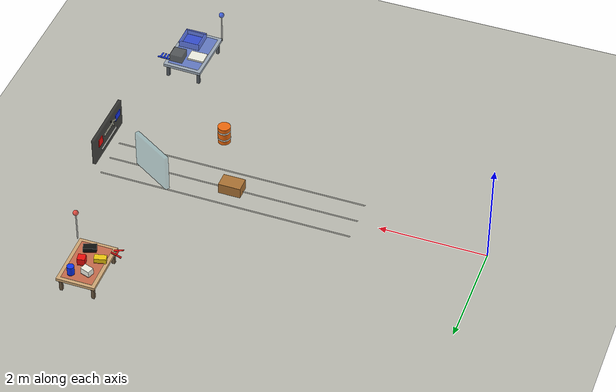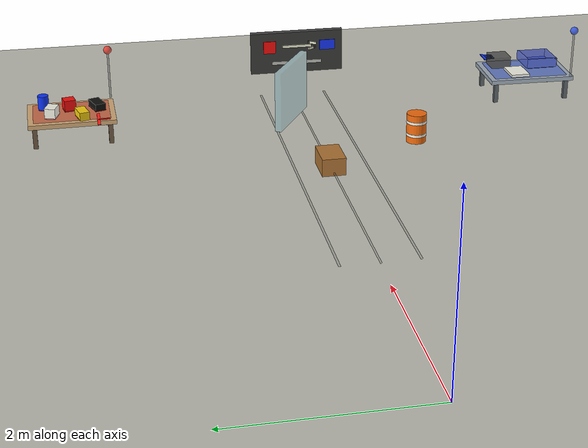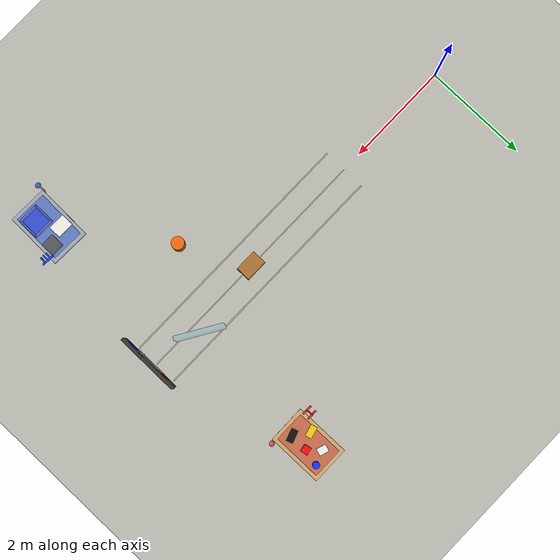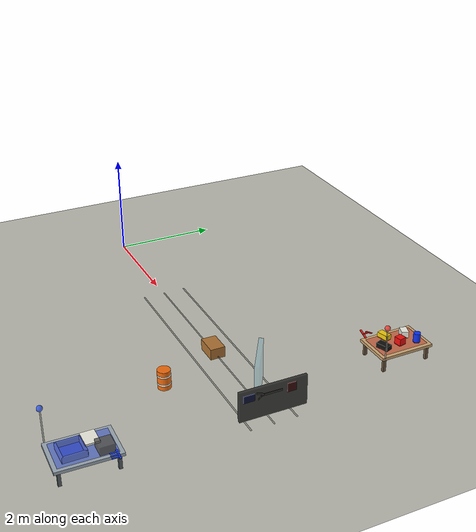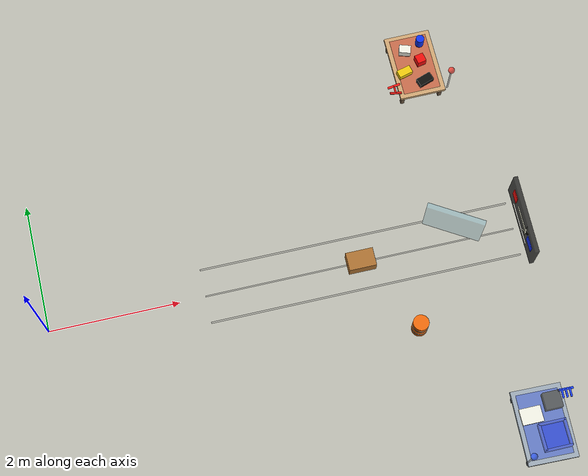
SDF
<sdf version="1.10">
 <world name="laboratory_landingbox_vla_task0">
  <model name="ground_plane">
   <static>true</static>
   <link name="link">
    <collision name="collision">
     <geometry><plane><normal>0 0 1</normal><size>500 500</size></plane></geometry>
     <surface><friction><ode><mu>100</mu><mu2>50</mu2></ode></friction></surface>
    </collision>
    <visual name="visual">
     <geometry><plane><normal>0 0 1</normal><size>500 500</size></plane></geometry>
     <material>
      <ambient>0.74000001 0.74000001 0.699999988 1</ambient>
      <diffuse>0.74000001 0.74000001 0.699999988 1</diffuse>
      <specular>0.0500000007 0.0500000007 0.0500000007 1</specular>
     </material>
    </visual>
    <inertial>
     <mass>1</mass>
     <inertia><ixx>1</ixx><ixy>0</ixy><ixz>0</ixz><iyy>1</iyy><iyz>0</iyz><izz>1</izz></inertia>
    </inertial>
   </link>
  </model>
  <model name="vla_task_route_corridor">
   <static>true</static>
   <pose>4.7999999999999998 0 0.035000000000000003 0 0 0</pose>
   <link name="link">
    <visual name="route_center_soft_line">
     <pose>0 0 0 3.1415926535897931 1.5707926536359933 3.1415926535897931</pose>
     <geometry><cylinder><radius>0.01</radius><length>4.7999999999999998</length></cylinder></geometry>
     <material>
      <ambient>0.449999988 0.449999988 0.449999988 0.180000007</ambient>
      <diffuse>0.449999988 0.449999988 0.449999988 0.180000007</diffuse>
      <emissive>0.00999999978 0.00999999978 0.00999999978 1</emissive>
     </material>
     <transparency>0.78000000000000003</transparency>
     <cast_shadows>false</cast_shadows>
    </visual>
    <visual name="corridor_left_boundary">
     <pose>0 0.41999999999999998 0.002 0 0 0</pose>
     <geometry><box><size>4.7999999999999998 0.025000000000000001 0.0040000000000000001</size></box></geometry>
     <material>
      <ambient>0.349999994 0.349999994 0.349999994 0.200000003</ambient>
      <diffuse>0.349999994 0.349999994 0.349999994 0.200000003</diffuse>
     </material>
     <transparency>0.80000000000000004</transparency>
     <cast_shadows>false</cast_shadows>
    </visual>
    <visual name="corridor_right_boundary">
     <pose>0 -0.41999999999999998 0.002 0 0 0</pose>
     <geometry><box><size>4.7999999999999998 0.025000000000000001 0.0040000000000000001</size></box></geometry>
     <material>
      <ambient>0.349999994 0.349999994 0.349999994 0.200000003</ambient>
      <diffuse>0.349999994 0.349999994 0.349999994 0.200000003</diffuse>
     </material>
     <transparency>0.80000000000000004</transparency>
     <cast_shadows>false</cast_shadows>
    </visual>
    <inertial>
     <mass>1</mass>
     <inertia><ixx>1</ixx><ixy>0</ixy><ixz>0</ixz><iyy>1</iyy><iyz>0</iyz><izz>1</izz></inertia>
    </inertial>
   </link>
  </model>
  <model name="vla_zone_A_pickup_table">
   <static>true</static>
   <pose>6.3699121475219727 2.8866209983825684 0 0 0 1.5787100085316108</pose>
   <link name="link">
    <collision name="table_top_collision">
     <pose>0 0 0.28499999999999998 0 0 0</pose>
     <geometry><box><size>1.05 0.71999999999999997 0.055</size></box></geometry>
    </collision>
    <visual name="table_top_visual">
     <pose>0 0 0.28499999999999998 0 0 0</pose>
     <geometry><box><size>1.05 0.71999999999999997 0.055</size></box></geometry>
     <material>
      <ambient>0.779999971 0.620000005 0.419999987 1</ambient>
      <diffuse>0.819999993 0.660000026 0.460000008 1</diffuse>
      <specular>0.0500000007 0.0500000007 0.0500000007 1</specular>
     </material>
    </visual>
    <collision name="leg_fl_collision">
     <pose>0.45000000000000001 0.29999999999999999 0.14000000000000001 0 0 0</pose>
     <geometry><box><size>0.055 0.055 0.28000000000000003</size></box></geometry>
    </collision>
    <collision name="leg_fr_collision">
     <pose>0.45000000000000001 -0.29999999999999999 0.14000000000000001 0 0 0</pose>
     <geometry><box><size>0.055 0.055 0.28000000000000003</size></box></geometry>
    </collision>
    <collision name="leg_bl_collision">
     <pose>-0.45000000000000001 0.29999999999999999 0.14000000000000001 0 0 0</pose>
     <geometry><box><size>0.055 0.055 0.28000000000000003</size></box></geometry>
    </collision>
    <collision name="leg_br_collision">
     <pose>-0.45000000000000001 -0.29999999999999999 0.14000000000000001 0 0 0</pose>
     <geometry><box><size>0.055 0.055 0.28000000000000003</size></box></geometry>
    </collision>
    <visual name="leg_fl_visual">
     <pose>0.45000000000000001 0.29999999999999999 0.14000000000000001 0 0 0</pose>
     <geometry><box><size>0.055 0.055 0.28000000000000003</size></box></geometry>
     <material>
      <ambient>0.419999987 0.340000004 0.25 1</ambient>
      <diffuse>0.419999987 0.340000004 0.25 1</diffuse>
     </material>
    </visual>
    <visual name="leg_fr_visual">
     <pose>0.45000000000000001 -0.29999999999999999 0.14000000000000001 0 0 0</pose>
     <geometry><box><size>0.055 0.055 0.28000000000000003</size></box></geometry>
     <material>
      <ambient>0.419999987 0.340000004 0.25 1</ambient>
      <diffuse>0.419999987 0.340000004 0.25 1</diffuse>
     </material>
    </visual>
    <visual name="leg_bl_visual">
     <pose>-0.45000000000000001 0.29999999999999999 0.14000000000000001 0 0 0</pose>
     <geometry><box><size>0.055 0.055 0.28000000000000003</size></box></geometry>
     <material>
      <ambient>0.419999987 0.340000004 0.25 1</ambient>
      <diffuse>0.419999987 0.340000004 0.25 1</diffuse>
     </material>
    </visual>
    <visual name="leg_br_visual">
     <pose>-0.45000000000000001 -0.29999999999999999 0.14000000000000001 0 0 0</pose>
     <geometry><box><size>0.055 0.055 0.28000000000000003</size></box></geometry>
     <material>
      <ambient>0.419999987 0.340000004 0.25 1</ambient>
      <diffuse>0.419999987 0.340000004 0.25 1</diffuse>
     </material>
    </visual>
    <visual name="pickup_mat_A">
     <pose>0 0 0.318 0 0 0</pose>
     <geometry><box><size>0.92000000000000004 0.57999999999999996 0.01</size></box></geometry>
     <material>
      <ambient>0.779999971 0.119999997 0.100000001 0.400000006</ambient>
      <diffuse>0.779999971 0.119999997 0.100000001 0.400000006</diffuse>
     </material>
     <transparency>0.45000000000000001</transparency>
     <cast_shadows>false</cast_shadows>
    </visual>
    <visual name="label_A_left_bar">
     <pose>-0.42999999999999999 0.41999999999999998 0.35999999999999999 0.34999999999999998 0 0</pose>
     <geometry><box><size>0.035000000000000003 0.20000000000000001 0.01</size></box></geometry>
     <material>
      <ambient>0.949999988 0.100000001 0.0799999982 1</ambient>
      <diffuse>0.949999988 0.100000001 0.0799999982 1</diffuse>
     </material>
     <cast_shadows>false</cast_shadows>
    </visual>
    <visual name="label_A_right_bar">
     <pose>-0.31 0.41999999999999998 0.35999999999999999 -0.34999999999999998 0 0</pose>
     <geometry><box><size>0.035000000000000003 0.20000000000000001 0.01</size></box></geometry>
     <material>
      <ambient>0.949999988 0.100000001 0.0799999982 1</ambient>
      <diffuse>0.949999988 0.100000001 0.0799999982 1</diffuse>
     </material>
     <cast_shadows>false</cast_shadows>
    </visual>
    <visual name="label_A_cross_bar">
     <pose>-0.37 0.41999999999999998 0.35999999999999999 0 0 0</pose>
     <geometry><box><size>0.13 0.025000000000000001 0.01</size></box></geometry>
     <material>
      <ambient>0.949999988 0.100000001 0.0799999982 1</ambient>
      <diffuse>0.949999988 0.100000001 0.0799999982 1</diffuse>
     </material>
     <cast_shadows>false</cast_shadows>
    </visual>
    <visual name="A_beacon_pole">
     <pose>-0.5 -0.39000000000000001 0.62 0 0 0</pose>
     <geometry><cylinder><radius>0.012</radius><length>0.59999999999999998</length></cylinder></geometry>
     <material>
      <ambient>0.550000012 0.550000012 0.550000012 0.550000012</ambient>
      <diffuse>0.550000012 0.550000012 0.550000012 0.550000012</diffuse>
     </material>
     <transparency>0.34999999999999998</transparency>
     <cast_shadows>false</cast_shadows>
    </visual>
    <visual name="A_beacon_top">
     <pose>-0.5 -0.39000000000000001 0.93999999999999995 0 0 0</pose>
     <geometry><sphere><radius>0.050000000000000003</radius></sphere></geometry>
     <material>
      <ambient>1 0.150000006 0.100000001 0.699999988</ambient>
      <diffuse>1 0.150000006 0.100000001 0.699999988</diffuse>
      <emissive>0.100000001 0.00999999978 0 1</emissive>
     </material>
     <transparency>0.20000000000000001</transparency>
     <cast_shadows>false</cast_shadows>
    </visual>
    <inertial>
     <mass>1</mass>
     <inertia><ixx>1</ixx><ixy>0</ixy><ixz>0</ixz><iyy>1</iyy><iyz>0</iyz><izz>1</izz></inertia>
    </inertial>
   </link>
  </model>
  <model name="vla_object_A_target_red_cube">
   <static>false</static>
   <pose>6.4560966490308784 2.9059283736608132 0.38249901607302661 3.7162284112657946e-09 7.8468524122390894e-10 0.19726600386000487</pose>
   <link name="link">
    <inertial>
     <mass>0.16</mass>
     <inertia><ixx>0.00035</ixx><iyy>0.00035</iyy><izz>0.00035</izz><ixy>0</ixy><ixz>0</ixz><iyz>0</iyz></inertia>
    </inertial>
    <collision name="collision">
     <geometry><box><size>0.14000000000000001 0.14000000000000001 0.14000000000000001</size></box></geometry>
     <surface><friction><ode><mu>2</mu><mu2>2</mu2></ode></friction></surface>
    </collision>
    <visual name="visual">
     <geometry><box><size>0.14000000000000001 0.14000000000000001 0.14000000000000001</size></box></geometry>
     <material>
      <ambient>0.949999988 0.0500000007 0.0399999991 1</ambient>
      <diffuse>0.949999988 0.0500000007 0.0399999991 1</diffuse>
      <specular>0.0799999982 0.0799999982 0.0799999982 1</specular>
     </material>
    </visual>
   </link>
  </model>
  <model name="vla_object_A_distractor_blue_cylinder">
   <static>false</static>
   <pose>6.5268583297729492 3.2123100757598881 0.40249899973261904 -5.2286751532983168e-17 -3.9978752801492624e-17 3.031798647077225e-17</pose>
   <link name="link">
    <inertial>
     <mass>0.12</mass>
     <inertia>
      <ixx>0.00025000000000000001</ixx>
      <iyy>0.00025000000000000001</iyy>
      <izz>0.00025000000000000001</izz>
      <ixy>0</ixy>
      <ixz>0</ixz>
      <iyz>0</iyz>
     </inertia>
    </inertial>
    <collision name="collision">
     <geometry>
      <cylinder><radius>0.065000000000000002</radius><length>0.17999999999999999</length></cylinder>
     </geometry>
    </collision>
    <visual name="visual">
     <geometry>
      <cylinder><radius>0.065000000000000002</radius><length>0.17999999999999999</length></cylinder>
     </geometry>
     <material>
      <ambient>0.0500000007 0.200000003 0.949999988 1</ambient>
      <diffuse>0.0500000007 0.200000003 0.949999988 1</diffuse>
     </material>
    </visual>
   </link>
  </model>
  <model name="vla_object_A_distractor_yellow_box">
   <static>false</static>
   <pose>6.1689209458017578 2.7596796821973859 0.36249932675363683 -8.0028333925746414e-07 -1.4491169570005836e-06 0.24885500107871739</pose>
   <link name="link">
    <inertial>
     <mass>0.13</mass>
     <inertia>
      <ixx>0.00029999999999999997</ixx>
      <iyy>0.00029999999999999997</iyy>
      <izz>0.00029999999999999997</izz>
      <ixy>0</ixy>
      <ixz>0</ixz>
      <iyz>0</iyz>
     </inertia>
    </inertial>
    <collision name="collision">
     <geometry><box><size>0.22 0.12 0.10000000000000001</size></box></geometry>
    </collision>
    <visual name="visual">
     <geometry><box><size>0.22 0.12 0.10000000000000001</size></box></geometry>
     <material>
      <ambient>0.949999988 0.800000012 0.0500000007 1</ambient>
      <diffuse>0.949999988 0.800000012 0.0500000007 1</diffuse>
     </material>
    </visual>
   </link>
  </model>
  <model name="vla_object_A_white_package">
   <static>false</static>
   <pose>6.2626157904637987 3.1170316822776378 0.37749962307623264 1.4491056660645117e-07 -3.306103463706711e-11 -0.31173399987334116</pose>
   <link name="link">
    <inertial>
     <mass>0.14999999999999999</mass>
     <inertia>
      <ixx>0.00032000000000000003</ixx>
      <iyy>0.00032000000000000003</iyy>
      <izz>0.00032000000000000003</izz>
      <ixy>0</ixy>
      <ixz>0</ixz>
      <iyz>0</iyz>
     </inertia>
    </inertial>
    <collision name="collision">
     <geometry><box><size>0.17999999999999999 0.13 0.13</size></box></geometry>
    </collision>
    <visual name="visual">
     <geometry><box><size>0.17999999999999999 0.13 0.13</size></box></geometry>
     <material>
      <ambient>0.920000017 0.920000017 0.860000014 1</ambient>
      <diffuse>0.949999988 0.949999988 0.899999976 1</diffuse>
      <specular>0.0599999987 0.0599999987 0.0599999987 1</specular>
     </material>
    </visual>
   </link>
  </model>
  <model name="vla_object_A_black_tool_case">
   <static>false</static>
   <pose>6.4486085220249123 2.5699086981791219 0.35749953693577929 -3.1415910951926418 -2.268177360091531e-13 -2.812510393596491</pose>
   <link name="link">
    <inertial>
     <mass>0.22</mass>
     <inertia>
      <ixx>0.00050000000000000001</ixx>
      <iyy>0.00050000000000000001</iyy>
      <izz>0.00050000000000000001</izz>
      <ixy>0</ixy>
      <ixz>0</ixz>
      <iyz>0</iyz>
     </inertia>
    </inertial>
    <collision name="collision">
     <geometry><box><size>0.23999999999999999 0.13 0.089999999999999997</size></box></geometry>
    </collision>
    <visual name="visual">
     <geometry><box><size>0.23999999999999999 0.13 0.089999999999999997</size></box></geometry>
     <material>
      <ambient>0.0500000007 0.0500000007 0.0450000018 1</ambient>
      <diffuse>0.0599999987 0.0599999987 0.0500000007 1</diffuse>
     </material>
    </visual>
   </link>
  </model>
  <model name="vla_zone_B_drop_table">
   <static>true</static>
   <pose>6.7679929733276367 -3.0363023281097412 0 0 0 -1.5980300171164212</pose>
   <link name="link">
    <collision name="table_top_collision">
     <pose>0 0 0.28499999999999998 0 0 0</pose>
     <geometry><box><size>1.1000000000000001 0.75 0.055</size></box></geometry>
    </collision>
    <visual name="table_top_visual">
     <pose>0 0 0.28499999999999998 0 0 0</pose>
     <geometry><box><size>1.1000000000000001 0.75 0.055</size></box></geometry>
     <material>
      <ambient>0.579999983 0.629999995 0.680000007 1</ambient>
      <diffuse>0.620000005 0.670000017 0.720000029 1</diffuse>
      <specular>0.0399999991 0.0399999991 0.0399999991 1</specular>
     </material>
    </visual>
    <collision name="leg_fl_collision">
     <pose>0.46999999999999997 0.31 0.14000000000000001 0 0 0</pose>
     <geometry><box><size>0.055 0.055 0.28000000000000003</size></box></geometry>
    </collision>
    <collision name="leg_fr_collision">
     <pose>0.46999999999999997 -0.31 0.14000000000000001 0 0 0</pose>
     <geometry><box><size>0.055 0.055 0.28000000000000003</size></box></geometry>
    </collision>
    <collision name="leg_bl_collision">
     <pose>-0.46999999999999997 0.31 0.14000000000000001 0 0 0</pose>
     <geometry><box><size>0.055 0.055 0.28000000000000003</size></box></geometry>
    </collision>
    <collision name="leg_br_collision">
     <pose>-0.46999999999999997 -0.31 0.14000000000000001 0 0 0</pose>
     <geometry><box><size>0.055 0.055 0.28000000000000003</size></box></geometry>
    </collision>
    <visual name="leg_fl_visual">
     <pose>0.46999999999999997 0.31 0.14000000000000001 0 0 0</pose>
     <geometry><box><size>0.055 0.055 0.28000000000000003</size></box></geometry>
     <material>
      <ambient>0.349999994 0.379999995 0.400000006 1</ambient>
      <diffuse>0.349999994 0.379999995 0.400000006 1</diffuse>
     </material>
    </visual>
    <visual name="leg_fr_visual">
     <pose>0.46999999999999997 -0.31 0.14000000000000001 0 0 0</pose>
     <geometry><box><size>0.055 0.055 0.28000000000000003</size></box></geometry>
     <material>
      <ambient>0.349999994 0.379999995 0.400000006 1</ambient>
      <diffuse>0.349999994 0.379999995 0.400000006 1</diffuse>
     </material>
    </visual>
    <visual name="leg_bl_visual">
     <pose>-0.46999999999999997 0.31 0.14000000000000001 0 0 0</pose>
     <geometry><box><size>0.055 0.055 0.28000000000000003</size></box></geometry>
     <material>
      <ambient>0.349999994 0.379999995 0.400000006 1</ambient>
      <diffuse>0.349999994 0.379999995 0.400000006 1</diffuse>
     </material>
    </visual>
    <visual name="leg_br_visual">
     <pose>-0.46999999999999997 -0.31 0.14000000000000001 0 0 0</pose>
     <geometry><box><size>0.055 0.055 0.28000000000000003</size></box></geometry>
     <material>
      <ambient>0.349999994 0.379999995 0.400000006 1</ambient>
      <diffuse>0.349999994 0.379999995 0.400000006 1</diffuse>
     </material>
    </visual>
    <visual name="drop_mat_B">
     <pose>0 0 0.318 0 0 0</pose>
     <geometry><box><size>0.95999999999999996 0.62 0.01</size></box></geometry>
     <material>
      <ambient>0.100000001 0.25 0.899999976 0.400000006</ambient>
      <diffuse>0.100000001 0.25 0.899999976 0.400000006</diffuse>
     </material>
     <transparency>0.5</transparency>
     <cast_shadows>false</cast_shadows>
    </visual>
    <visual name="label_B_vertical">
     <pose>-0.42999999999999999 0.41999999999999998 0.35999999999999999 0 0 0</pose>
     <geometry><box><size>0.035000000000000003 0.23000000000000001 0.01</size></box></geometry>
     <material>
      <ambient>0.100000001 0.25 0.949999988 1</ambient>
      <diffuse>0.100000001 0.25 0.949999988 1</diffuse>
     </material>
     <cast_shadows>false</cast_shadows>
    </visual>
    <visual name="label_B_top">
     <pose>-0.37 0.47999999999999998 0.35999999999999999 0 0 0</pose>
     <geometry><box><size>0.13 0.028000000000000001 0.01</size></box></geometry>
     <material>
      <ambient>0.100000001 0.25 0.949999988 1</ambient>
      <diffuse>0.100000001 0.25 0.949999988 1</diffuse>
     </material>
     <cast_shadows>false</cast_shadows>
    </visual>
    <visual name="label_B_mid">
     <pose>-0.37 0.41999999999999998 0.35999999999999999 0 0 0</pose>
     <geometry><box><size>0.13 0.028000000000000001 0.01</size></box></geometry>
     <material>
      <ambient>0.100000001 0.25 0.949999988 1</ambient>
      <diffuse>0.100000001 0.25 0.949999988 1</diffuse>
     </material>
     <cast_shadows>false</cast_shadows>
    </visual>
    <visual name="label_B_bottom">
     <pose>-0.37 0.35999999999999999 0.35999999999999999 0 0 0</pose>
     <geometry><box><size>0.13 0.028000000000000001 0.01</size></box></geometry>
     <material>
      <ambient>0.100000001 0.25 0.949999988 1</ambient>
      <diffuse>0.100000001 0.25 0.949999988 1</diffuse>
     </material>
     <cast_shadows>false</cast_shadows>
    </visual>
    <visual name="B_beacon_pole">
     <pose>0.5 -0.39000000000000001 0.62 0 0 0</pose>
     <geometry><cylinder><radius>0.012</radius><length>0.59999999999999998</length></cylinder></geometry>
     <material>
      <ambient>0.550000012 0.550000012 0.550000012 0.550000012</ambient>
      <diffuse>0.550000012 0.550000012 0.550000012 0.550000012</diffuse>
     </material>
     <transparency>0.34999999999999998</transparency>
     <cast_shadows>false</cast_shadows>
    </visual>
    <visual name="B_beacon_top">
     <pose>0.5 -0.39000000000000001 0.93999999999999995 0 0 0</pose>
     <geometry><sphere><radius>0.050000000000000003</radius></sphere></geometry>
     <material>
      <ambient>0.100000001 0.280000001 1 0.699999988</ambient>
      <diffuse>0.100000001 0.280000001 1 0.699999988</diffuse>
      <emissive>0 0.0199999996 0.119999997 1</emissive>
     </material>
     <transparency>0.20000000000000001</transparency>
     <cast_shadows>false</cast_shadows>
    </visual>
    <inertial>
     <mass>1</mass>
     <inertia><ixx>1</ixx><ixy>0</ixy><ixz>0</ixz><iyy>1</iyy><iyz>0</iyz><izz>1</izz></inertia>
    </inertial>
   </link>
  </model>
  <model name="vla_container_B_correct_blue_tray">
   <static>true</static>
   <pose>6.8512401580810547 -3.2364804744720459 0.3449999988079071 0 0 0</pose>
   <link name="link">
    <collision name="floor_collision">
     <pose>0 0 0.02 0 0 0</pose>
     <geometry><box><size>0.35999999999999999 0.35999999999999999 0.029999999999999999</size></box></geometry>
    </collision>
    <visual name="floor_visual">
     <pose>0 0 0.02 0 0 0</pose>
     <geometry><box><size>0.35999999999999999 0.35999999999999999 0.029999999999999999</size></box></geometry>
     <material>
      <ambient>0.0799999982 0.200000003 0.899999976 0.699999988</ambient>
      <diffuse>0.0799999982 0.200000003 0.899999976 0.699999988</diffuse>
     </material>
     <transparency>0.20000000000000001</transparency>
     <cast_shadows>false</cast_shadows>
    </visual>
    <collision name="wall_n_collision">
     <pose>0 0.19 0.074999999999999997 0 0 0</pose>
     <geometry><box><size>0.40000000000000002 0.029999999999999999 0.11</size></box></geometry>
    </collision>
    <collision name="wall_s_collision">
     <pose>0 -0.19 0.074999999999999997 0 0 0</pose>
     <geometry><box><size>0.40000000000000002 0.029999999999999999 0.11</size></box></geometry>
    </collision>
    <collision name="wall_e_collision">
     <pose>0.19 0 0.074999999999999997 0 0 0</pose>
     <geometry><box><size>0.029999999999999999 0.40000000000000002 0.11</size></box></geometry>
    </collision>
    <collision name="wall_w_collision">
     <pose>-0.19 0 0.074999999999999997 0 0 0</pose>
     <geometry><box><size>0.029999999999999999 0.40000000000000002 0.11</size></box></geometry>
    </collision>
    <visual name="wall_n_visual">
     <pose>0 0.19 0.074999999999999997 0 0 0</pose>
     <geometry><box><size>0.40000000000000002 0.029999999999999999 0.11</size></box></geometry>
     <material>
      <ambient>0.0799999982 0.200000003 0.899999976 0.550000012</ambient>
      <diffuse>0.0799999982 0.200000003 0.899999976 0.550000012</diffuse>
     </material>
     <transparency>0.34999999999999998</transparency>
     <cast_shadows>false</cast_shadows>
    </visual>
    <visual name="wall_s_visual">
     <pose>0 -0.19 0.074999999999999997 0 0 0</pose>
     <geometry><box><size>0.40000000000000002 0.029999999999999999 0.11</size></box></geometry>
     <material>
      <ambient>0.0799999982 0.200000003 0.899999976 0.550000012</ambient>
      <diffuse>0.0799999982 0.200000003 0.899999976 0.550000012</diffuse>
     </material>
     <transparency>0.34999999999999998</transparency>
     <cast_shadows>false</cast_shadows>
    </visual>
    <visual name="wall_e_visual">
     <pose>0.19 0 0.074999999999999997 0 0 0</pose>
     <geometry><box><size>0.029999999999999999 0.40000000000000002 0.11</size></box></geometry>
     <material>
      <ambient>0.0799999982 0.200000003 0.899999976 0.550000012</ambient>
      <diffuse>0.0799999982 0.200000003 0.899999976 0.550000012</diffuse>
     </material>
     <transparency>0.34999999999999998</transparency>
     <cast_shadows>false</cast_shadows>
    </visual>
    <visual name="wall_w_visual">
     <pose>-0.19 0 0.074999999999999997 0 0 0</pose>
     <geometry><box><size>0.029999999999999999 0.40000000000000002 0.11</size></box></geometry>
     <material>
      <ambient>0.0799999982 0.200000003 0.899999976 0.550000012</ambient>
      <diffuse>0.0799999982 0.200000003 0.899999976 0.550000012</diffuse>
     </material>
     <transparency>0.34999999999999998</transparency>
     <cast_shadows>false</cast_shadows>
    </visual>
    <inertial>
     <mass>1</mass>
     <inertia><ixx>1</ixx><ixy>0</ixy><ixz>0</ixz><iyy>1</iyy><iyz>0</iyz><izz>1</izz></inertia>
    </inertial>
   </link>
  </model>
  <model name="vla_container_B_distractor_gray_bin">
   <static>true</static>
   <pose>6.9520001411437988 -2.7426645755767822 0.36000001430511475 0 0 0</pose>
   <link name="link">
    <collision name="collision"><geometry><box><size>0.25 0.25 0.22</size></box></geometry></collision>
    <visual name="visual">
     <geometry><box><size>0.25 0.25 0.22</size></box></geometry>
     <material>
      <ambient>0.25 0.25 0.25 0.75</ambient>
      <diffuse>0.280000001 0.280000001 0.280000001 0.75</diffuse>
     </material>
     <transparency>0.14999999999999999</transparency>
    </visual>
    <inertial>
     <mass>1</mass>
     <inertia><ixx>1</ixx><ixy>0</ixy><ixz>0</ixz><iyy>1</iyy><iyz>0</iyz><izz>1</izz></inertia>
    </inertial>
   </link>
  </model>
  <model name="vla_container_B_white_platform">
   <static>true</static>
   <pose>6.6124391555786133 -2.8786399364471436 0.34200000762939453 0 0 0</pose>
   <link name="link">
    <collision name="collision">
     <geometry><box><size>0.32000000000000001 0.23999999999999999 0.035000000000000003</size></box></geometry>
    </collision>
    <visual name="visual">
     <geometry><box><size>0.32000000000000001 0.23999999999999999 0.035000000000000003</size></box></geometry>
     <material>
      <ambient>0.920000017 0.920000017 0.879999995 1</ambient>
      <diffuse>0.949999988 0.949999988 0.899999976 1</diffuse>
      <specular>0.0799999982 0.0799999982 0.0799999982 1</specular>
     </material>
    </visual>
    <inertial>
     <mass>1</mass>
     <inertia><ixx>1</ixx><ixy>0</ixy><ixz>0</ixz><iyy>1</iyy><iyz>0</iyz><izz>1</izz></inertia>
    </inertial>
   </link>
  </model>
  <model name="vla_mid_obstacle_low_block">
   <static>true</static>
   <pose>4.7999999999999998 0 0.105 0 0 0</pose>
   <link name="link">
    <collision name="collision">
     <geometry><box><size>0.41999999999999998 0.28000000000000003 0.20999999999999999</size></box></geometry>
    </collision>
    <visual name="visual">
     <geometry><box><size>0.41999999999999998 0.28000000000000003 0.20999999999999999</size></box></geometry>
     <material>
      <ambient>0.649999976 0.419999987 0.180000007 1</ambient>
      <diffuse>0.680000007 0.449999988 0.200000003 1</diffuse>
     </material>
    </visual>
    <inertial>
     <mass>1</mass>
     <inertia><ixx>1</ixx><ixy>0</ixy><ixz>0</ixz><iyy>1</iyy><iyz>0</iyz><izz>1</izz></inertia>
    </inertial>
   </link>
  </model>
  <model name="vla_mid_obstacle_transparent_panel">
   <static>true</static>
   <pose>6.2662324905395508 0.1866798996925354 0.43000000715255737 0 0 1.0231699722319241</pose>
   <link name="link">
    <collision name="collision">
     <geometry><box><size>0.080000000000000002 0.90000000000000002 0.75</size></box></geometry>
    </collision>
    <visual name="visual">
     <geometry><box><size>0.080000000000000002 0.90000000000000002 0.75</size></box></geometry>
     <material>
      <ambient>0.300000012 0.699999988 0.850000024 0.25</ambient>
      <diffuse>0.300000012 0.699999988 0.850000024 0.25</diffuse>
      <specular>0.150000006 0.150000006 0.150000006 1</specular>
     </material>
     <transparency>0.69999999999999996</transparency>
     <cast_shadows>false</cast_shadows>
    </visual>
    <inertial>
     <mass>1</mass>
     <inertia><ixx>1</ixx><ixy>0</ixy><ixz>0</ixz><iyy>1</iyy><iyz>0</iyz><izz>1</izz></inertia>
    </inertial>
   </link>
  </model>
  <model name="vla_mid_obstacle_orange_barrel_primitive">
   <static>true</static>
   <pose>5.4114203453063965 -1.1919100284576416 0.18000000715255737 0 0 0</pose>
   <link name="link">
    <collision name="collision">
     <geometry><cylinder><radius>0.12</radius><length>0.35999999999999999</length></cylinder></geometry>
    </collision>
    <visual name="visual">
     <geometry><cylinder><radius>0.12</radius><length>0.35999999999999999</length></cylinder></geometry>
     <material>
      <ambient>0.949999988 0.419999987 0.0500000007 1</ambient>
      <diffuse>0.949999988 0.419999987 0.0500000007 1</diffuse>
     </material>
    </visual>
    <visual name="white_stripe_top">
     <pose>0 0 0.080000000000000002 0 0 0</pose>
     <geometry><cylinder><radius>0.122</radius><length>0.035000000000000003</length></cylinder></geometry>
     <material>
      <ambient>0.949999988 0.949999988 0.899999976 1</ambient>
      <diffuse>0.949999988 0.949999988 0.899999976 1</diffuse>
     </material>
     <cast_shadows>false</cast_shadows>
    </visual>
    <visual name="white_stripe_bottom">
     <pose>0 0 -0.080000000000000002 0 0 0</pose>
     <geometry><cylinder><radius>0.122</radius><length>0.035000000000000003</length></cylinder></geometry>
     <material>
      <ambient>0.949999988 0.949999988 0.899999976 1</ambient>
      <diffuse>0.949999988 0.949999988 0.899999976 1</diffuse>
     </material>
     <cast_shadows>false</cast_shadows>
    </visual>
    <inertial>
     <mass>1</mass>
     <inertia><ixx>1</ixx><ixy>0</ixy><ixz>0</ixz><iyy>1</iyy><iyz>0</iyz><izz>1</izz></inertia>
    </inertial>
   </link>
  </model>
  <model name="vla_task_instruction_board">
   <static>true</static>
   <pose>7.2542800903320312 -0.064850799739360809 0.60000002384185791 0 0 -1.5764185548857055</pose>
   <link name="link">
    <collision name="board_collision">
     <geometry><box><size>1.2 0.059999999999999998 0.55000000000000004</size></box></geometry>
    </collision>
    <visual name="board_visual">
     <geometry><box><size>1.2 0.059999999999999998 0.55000000000000004</size></box></geometry>
     <material>
      <ambient>0.119999997 0.119999997 0.119999997 0.800000012</ambient>
      <diffuse>0.119999997 0.119999997 0.119999997 0.800000012</diffuse>
     </material>
     <transparency>0.10000000000000001</transparency>
     <cast_shadows>false</cast_shadows>
    </visual>
    <visual name="red_square_symbol">
     <pose>-0.35999999999999999 -0.040000000000000001 0.080000000000000002 0 0 0</pose>
     <geometry><box><size>0.16 0.012 0.16</size></box></geometry>
     <material>
      <ambient>0.949999988 0.0500000007 0.0399999991 1</ambient>
      <diffuse>0.949999988 0.0500000007 0.0399999991 1</diffuse>
     </material>
     <cast_shadows>false</cast_shadows>
    </visual>
    <visual name="arrow_line">
     <pose>0 -0.040000000000000001 0.080000000000000002 0 0 0</pose>
     <geometry><box><size>0.38 0.012 0.035000000000000003</size></box></geometry>
     <material>
      <ambient>0.899999976 0.899999976 0.800000012 1</ambient>
      <diffuse>0.899999976 0.899999976 0.800000012 1</diffuse>
     </material>
     <cast_shadows>false</cast_shadows>
    </visual>
    <visual name="arrow_head_top">
     <pose>0.20000000000000001 -0.040000000000000001 0.115 0 0 -0.59999999999999998</pose>
     <geometry><box><size>0.12 0.012 0.029999999999999999</size></box></geometry>
     <material>
      <ambient>0.899999976 0.899999976 0.800000012 1</ambient>
      <diffuse>0.899999976 0.899999976 0.800000012 1</diffuse>
     </material>
     <cast_shadows>false</cast_shadows>
    </visual>
    <visual name="arrow_head_bottom">
     <pose>0.20000000000000001 -0.040000000000000001 0.044999999999999998 0 0 0.59999999999999998</pose>
     <geometry><box><size>0.12 0.012 0.029999999999999999</size></box></geometry>
     <material>
      <ambient>0.899999976 0.899999976 0.800000012 1</ambient>
      <diffuse>0.899999976 0.899999976 0.800000012 1</diffuse>
     </material>
     <cast_shadows>false</cast_shadows>
    </visual>
    <visual name="blue_tray_symbol">
     <pose>0.40000000000000002 -0.040000000000000001 0.080000000000000002 0 0 0</pose>
     <geometry><box><size>0.20000000000000001 0.012 0.13</size></box></geometry>
     <material>
      <ambient>0.0799999982 0.200000003 0.949999988 1</ambient>
      <diffuse>0.0799999982 0.200000003 0.949999988 1</diffuse>
     </material>
     <cast_shadows>false</cast_shadows>
    </visual>
    <visual name="negative_gray_hint">
     <pose>0 -0.040000000000000001 -0.14000000000000001 0 0 0</pose>
     <geometry><box><size>0.65000000000000002 0.012 0.040000000000000001</size></box></geometry>
     <material>
      <ambient>0.600000024 0.600000024 0.600000024 0.449999988</ambient>
      <diffuse>0.600000024 0.600000024 0.600000024 0.449999988</diffuse>
     </material>
     <transparency>0.34999999999999998</transparency>
     <cast_shadows>false</cast_shadows>
    </visual>
    <inertial>
     <mass>1</mass>
     <inertia><ixx>1</ixx><ixy>0</ixy><ixz>0</ixz><iyy>1</iyy><iyz>0</iyz><izz>1</izz></inertia>
    </inertial>
   </link>
  </model>
 </world>
</sdf>
